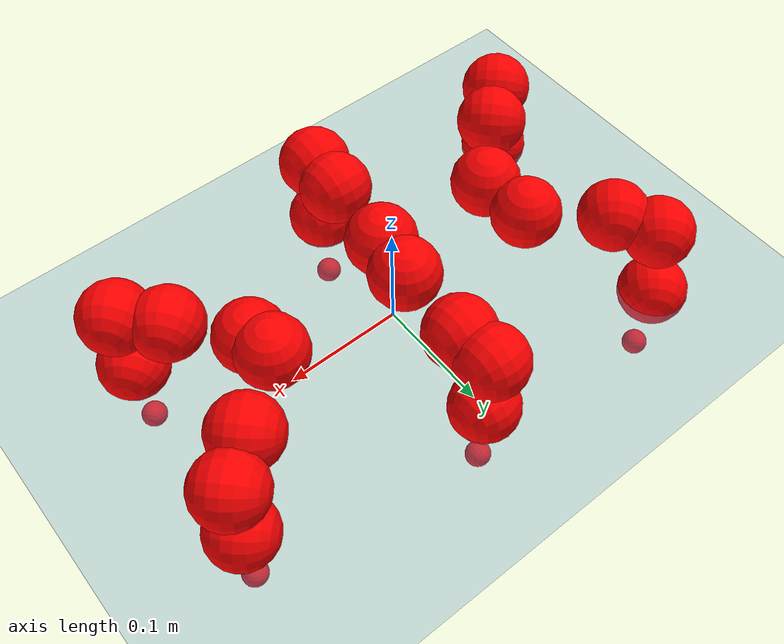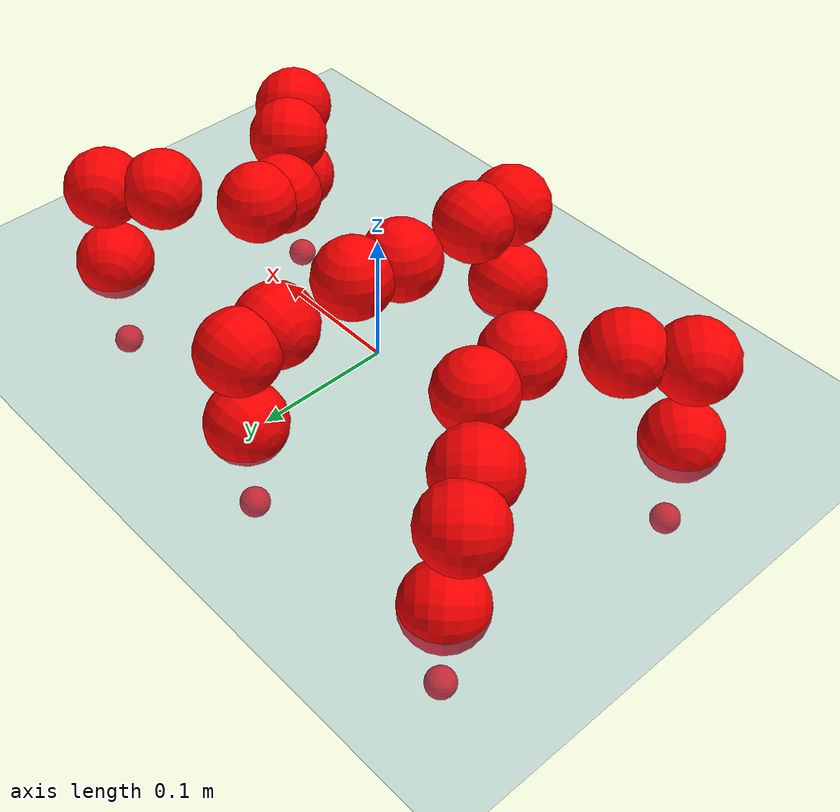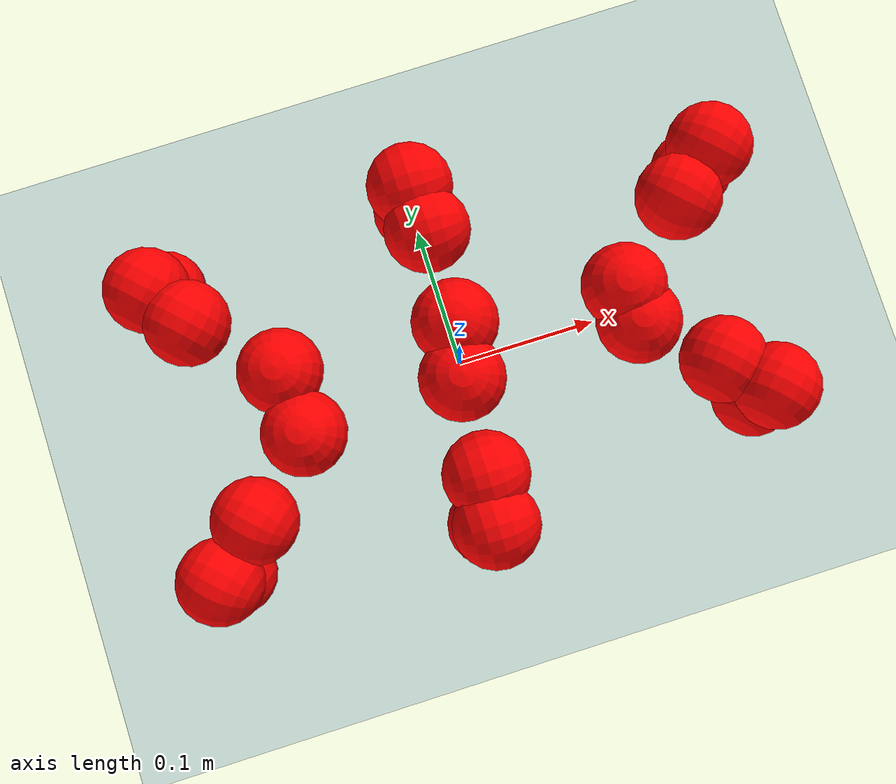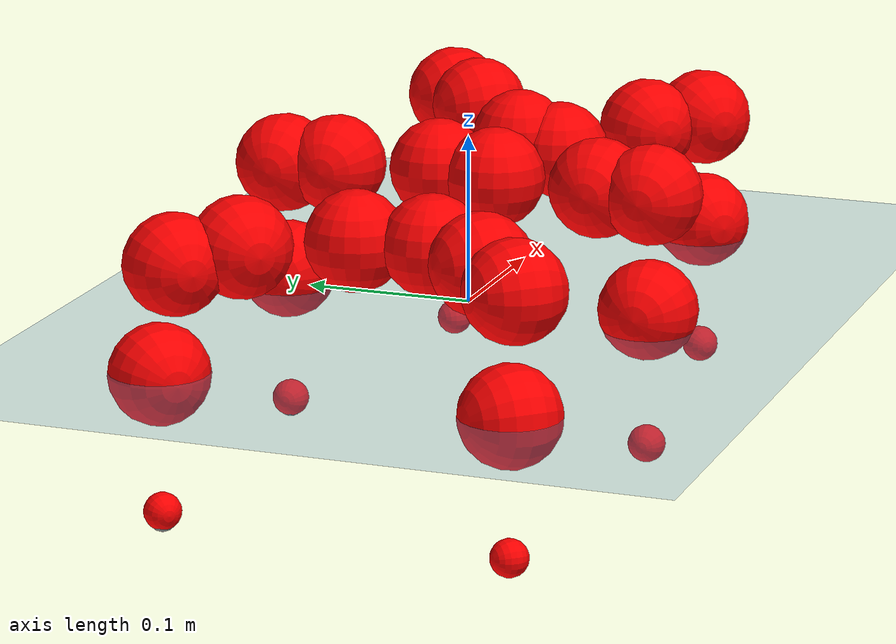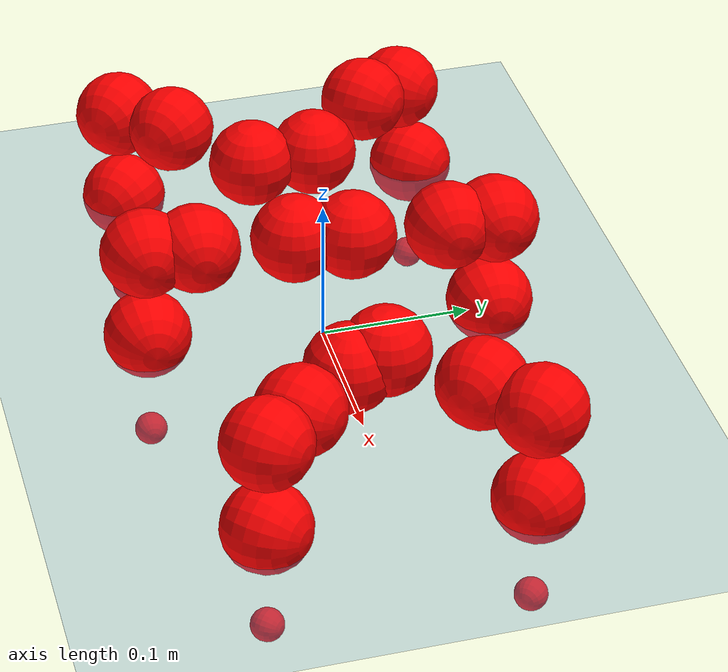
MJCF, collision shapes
<mujoco model="Golem">
  <compiler angle="radian" assetdir="assets" balanceinertia="true" inertiafromgeom="false"/>

  <option timestep="0.005" density="1.2" viscosity="2e-05"/>

  <size nkey="1"/>

  <visual>
    <quality shadowsize="8192"/>
    <map shadowclip="0.5"/>
  </visual>

  <default>
    <default class="/">
      <joint armature="0.01" damping="0.01" frictionloss="0.01"/>
      <geom contype="0" conaffinity="0" group="1" solref="-1000 -80"/>
      <site size="0.01 0.005 0.005" group="5"/>
      <general forcelimited="true" biastype="affine" gainprm="25" biasprm="0 -25 -0.5"/>
      <default class="visual">
        <geom type="mesh" group="2"/>
      </default>
      <default class="collision">
        <geom group="3"/>
      </default>
      <default class="foot">
        <geom size="0.01 0 0" condim="6" group="4" priority="1" solimp="0.015 1 0.01"/>
      </default>
      <default class="reward_collision_sphere">
        <geom group="5" rgba="1 0 0 1"/>
      </default>
    </default>
  </default>

  <asset>
    <texture type="skybox" colorspace="auto" name="//unnamed_texture_0" builtin="gradient" rgb1="0.95 0.95 0.95" rgb2="0.95 0.95 0.95" width="100" height="600"/>
    <texture type="2d" colorspace="auto" name="texplane" builtin="checker" rgb1="0.345 0.575 0.748" rgb2="0.345 0.575 0.748" markrgb="1 1 1" width="512" height="512"/>
    <material name="MatPlane" class="/" texture="texplane" texuniform="true" texrepeat="2 2" specular="0.9"/>
    <mesh name="body" class="/" file="body.stl" scale="0.001 0.001 0.001"/>
    <mesh name="coxa" class="/" file="coxa.stl" scale="0.001 0.001 0.001"/>
    <mesh name="femur" class="/" file="femur.stl" scale="0.001 0.001 0.001"/>
    <mesh name="tibia" class="/" file="tibia.stl" scale="0.001 0.001 0.001"/>
    <mesh name="tarsus" class="/" file="tarsus.stl" scale="0.001 0.001 0.001"/>
  </asset>

  <worldbody>
    <geom name="floor" class="/" size="100 100 0.125" type="plane" group="0" material="MatPlane"/>
    <light name="toplight_shadow" class="/" pos="0 0 5" dir="0.0990148 0.0990148 -0.990148" type="directional" ambient="0.04 0.04 0.04" diffuse="0.55 0.55 0.55" specular="0.12 0.12 0.12"/>
    <light name="toplight_fill" class="/" pos="0 0 5" dir="0.0990148 0.0990148 -0.990148" type="directional" castshadow="false" ambient="0.04 0.04 0.04" diffuse="0.3 0.3 0.3" specular="0.08 0.08 0.08"/>
    <body name="trunk" pos="-0.000787704 0.000801756 0.00218195" quat="0.999995 -0.00243974 0.00209842 0.000305313">
      <inertial pos="0.00219905 -0.00162857 -0.00422276" quat="1 -0.000159158 -3.10109e-05 -0.000133236" mass="1.34137" diaginertia="0.00240217 6.05523e-05 0.0153865"/>
      <joint name="//unnamed_joint_0" type="free"/>
      <geom name="//unnamed_geom_1" class="/" pos="0 0 0.0693523" quat="1 0 0 0" type="mesh" rgba="0.9 0.9 0.9 1" mesh="body"/>
      <site name="imu" class="/" pos="0.0689755 0.00399068 0.107239" size="0.00729592"/>
      <camera name="track" class="/" pos="0 -0.716194 0" quat="0.707107 0.707107 0 0" mode="trackcom"/>
      <camera name="ego_camera" class="/" pos="0.0971163 0 0.108363" quat="-0.5 -0.5 0.5 0.5"/>
      <body name="coxa_RR" pos="-0.12941 -0.0367348 0.0628991" quat="0.3801 -0.000810401 0.00121194 -0.924944">
        <inertial pos="0.000351156 -0.000766918 -0.00290273" quat="0.999971 0.00519487 0.00523617 0.00210253" mass="0.0723675" diaginertia="0.0022554 5.6861e-05 0.0141565"/>
        <joint name="coxa_joint_RR" class="/" pos="0 0 0" axis="-0.00684949 0.0129065 -0.999893" range="-3.0785 3.2367" armature="0.00723686" damping="0.0019831" frictionloss="0.00695992"/>
        <geom name="//unnamed_geom_2" class="/" type="mesh" rgba="0.2 0.2 0.2 1" mesh="coxa"/>
        <geom name="//unnamed_geom_3" class="reward_collision_sphere" size="0.0291837" pos="-0.0224115 0 0"/>
        <body name="femur_RR" pos="0.0425374 -0.000185182 0.00533815" quat="0.499244 -0.499888 0.500727 0.500139">
          <inertial pos="-0.000596754 -0.000204818 -0.00211895" quat="0.999954 0.00442101 -0.00825116 0.00184491" mass="0.078377" diaginertia="0.00231112 5.81229e-05 0.0144869"/>
          <joint name="femur_joint_RR" class="/" pos="0 0 0" axis="0.000690758 -0.000363214 -1" range="-3.23568 3.16258" armature="0.00889651" damping="0.00914105" frictionloss="0.00666857"/>
          <geom name="//unnamed_geom_4" class="/" type="mesh" rgba="0.9 0.9 0.9 1" mesh="femur"/>
          <geom name="//unnamed_geom_5" class="reward_collision_sphere" size="0.0291837"/>
          <body name="tibia_RR" pos="0.00356416 -0.0450377 -0.00146208" quat="0.00098497 0.999999 0.000572128 -0.000333323">
            <inertial pos="-0.00329466 -0.00058463 0.000630983" quat="0.999951 -0.000613946 0.000517576 0.00991" mass="0.074599" diaginertia="0.00228594 5.95734e-05 0.0156827"/>
            <joint name="tibia_joint_RR" class="/" pos="0 0 0" axis="-0.0227085 0.0122903 0.999667" range="-3.2438 3.16517" armature="0.00839712" damping="0.0200417" frictionloss="0.00640402"/>
            <geom name="//unnamed_geom_6" class="/" type="mesh" rgba="0.2 0.2 0.2 1" mesh="tibia"/>
            <geom name="//unnamed_geom_7" class="reward_collision_sphere" size="0.0291837"/>
            <body name="tarsus_RR" pos="0.0693145 -0.000161809 0.00205388" quat="1 0.000445963 0.000371064 0.000213801">
              <inertial pos="0.04816 -0.000354493 0.00271344" quat="0.502432 0.498908 0.501641 0.497" mass="0.074551" diaginertia="0.00231313 5.91346e-05 0.0146451"/>
              <joint name="tarsus_joint_RR" class="/" pos="0 0 0" axis="0.00936081 0.0157319 0.999832" range="-3.14426 3.0902" armature="0.00644418" damping="4.26538e-05" frictionloss="0.00817868"/>
              <geom name="//unnamed_geom_8" class="/" type="mesh" rgba="0.9 0.9 0.9 1" mesh="tarsus"/>
              <geom name="foot_1" class="foot" size="0.00761412" pos="0.0836694 0 0" quat="0 -0.707107 0 0.707107"/>
              <geom name="//unnamed_geom_10" class="reward_collision_sphere" size="0.0291837"/>
              <geom name="//unnamed_geom_11" class="reward_collision_sphere" size="0.0109439" pos="0.0803077 0 0"/>
              <site name="foot_1" class="foot" pos="0.0836694 0 0" quat="0 -0.707107 0 0.707107" size="0.00729592"/>
            </body>
          </body>
        </body>
      </body>
      <body name="coxa_RM" pos="-0.00336655 -0.0412973 0.0754267" quat="0.706871 -0.00146948 0.00183325 -0.707339">
        <inertial pos="0.000362672 0.00416702 0.00122291" quat="0.999951 0.00928294 -0.00317653 0.00159038" mass="0.0797206" diaginertia="0.00242258 5.64331e-05 0.0144372"/>
        <joint name="coxa_joint_RM" class="/" pos="0 0 0" axis="0.0172302 0.011849 -0.999781" range="-3.12626 3.06955" armature="0.00524637" damping="0.0289466" frictionloss="0.00808782"/>
        <geom name="//unnamed_geom_12" class="/" type="mesh" rgba="0.2 0.2 0.2 1" mesh="coxa"/>
        <geom name="//unnamed_geom_13" class="reward_collision_sphere" size="0.0291837" pos="-0.0224115 0 0"/>
        <body name="femur_RM" pos="0.0421747 -0.0042986 0.000230476" quat="0.499997 -0.499998 0.500007 0.499998">
          <inertial pos="-0.00135742 0.00123926 0.00164843" quat="0.99994 0.00687547 -0.00323358 0.00792181" mass="0.0757162" diaginertia="0.00241097 5.65297e-05 0.014359"/>
          <joint name="femur_joint_RM" class="/" pos="0 0 0" axis="-0.000690282 -0.0071151 -0.999974" range="-3.13945 3.11813" armature="0.00667495" damping="0" frictionloss="0.00665388"/>
          <geom name="//unnamed_geom_14" class="/" type="mesh" rgba="0.9 0.9 0.9 1" mesh="femur"/>
          <geom name="//unnamed_geom_15" class="reward_collision_sphere" size="0.0291837"/>
          <body name="tibia_RM" pos="0.000412747 -0.032983 -0.00349187" quat="-0.00113903 0.999999 -0.000205071 0.000488764">
            <inertial pos="0.00106981 -0.00248025 0.0043438" quat="0.999818 0.00228196 -0.0185544 -0.00381079" mass="0.0769015" diaginertia="0.00221383 6.07401e-05 0.0144297"/>
            <joint name="tibia_joint_RM" class="/" pos="0 0 0" axis="0.00400946 0.00399979 0.999984" range="-3.09179 3.12506" armature="0.00577124" damping="0.00544634" frictionloss="0.00509468"/>
            <geom name="//unnamed_geom_16" class="/" type="mesh" rgba="0.2 0.2 0.2 1" mesh="tibia"/>
            <geom name="//unnamed_geom_17" class="reward_collision_sphere" size="0.0291837"/>
            <body name="tarsus_RM" pos="0.0672767 -0.000651586 0.00264567" quat="1 -2.79347e-05 2.18961e-05 3.83935e-05">
              <inertial pos="0.0432335 -0.000925017 -0.00138797" quat="0.493979 0.50282 0.497374 0.505743" mass="0.0801104" diaginertia="0.00233408 5.95097e-05 0.0152589"/>
              <joint name="tarsus_joint_RM" class="/" pos="0 0 0" axis="-0.000123453 -0.00243114 0.999997" range="-3.24471 3.13868" armature="0.00487841" damping="5.03789e-05" frictionloss="0.00784788"/>
              <geom name="//unnamed_geom_18" class="/" type="mesh" rgba="0.9 0.9 0.9 1" mesh="tarsus"/>
              <geom name="foot_2" class="foot" size="0.00595259" pos="0.0836694 0 0" quat="0 -0.707107 0 0.707107"/>
              <geom name="//unnamed_geom_20" class="reward_collision_sphere" size="0.0291837"/>
              <geom name="//unnamed_geom_21" class="reward_collision_sphere" size="0.0109439" pos="0.0803077 0 0"/>
              <site name="foot_2" class="foot" pos="0.0836694 0 0" quat="0 -0.707107 0 0.707107" size="0.00729592"/>
            </body>
          </body>
        </body>
      </body>
      <body name="coxa_RF" pos="0.137001 -0.0325374 0.0627971" quat="0.923723 -0.000120973 -0.000138018 -0.38306">
        <inertial pos="0.00256016 0.00666218 -0.00121046" quat="0.999941 0.00725502 -0.00331442 0.00739381" mass="0.0752543" diaginertia="0.00224666 6.00957e-05 0.0147635"/>
        <joint name="coxa_joint_RF" class="/" pos="0 0 0" axis="-0.000125161 -0.000263445 -1" range="-3.15241 3.04022" armature="0.00765789" damping="0.0215215" frictionloss="0.00643019"/>
        <geom name="//unnamed_geom_22" class="/" type="mesh" rgba="0.2 0.2 0.2 1" mesh="coxa"/>
        <geom name="//unnamed_geom_23" class="reward_collision_sphere" size="0.0291837" pos="-0.0224115 0 0"/>
        <body name="femur_RF" pos="0.0376569 0.000899267 0.00838331" quat="0.499476 -0.500121 0.498644 0.501754">
          <inertial pos="0.00159631 0.00230526 -0.00483107" quat="0.999649 -0.0247827 0.00752602 0.0055572" mass="0.0756803" diaginertia="0.00236618 6.29395e-05 0.014526"/>
          <joint name="femur_joint_RF" class="/" pos="0 0 0" axis="0.00413331 0.0051532 -0.999978" stiffness="0.00746023" range="-3.17774 3.14065" armature="0.00795777" damping="0.00660818" frictionloss="0.00900818"/>
          <geom name="//unnamed_geom_24" class="/" type="mesh" rgba="0.9 0.9 0.9 1" mesh="femur"/>
          <geom name="//unnamed_geom_25" class="reward_collision_sphere" size="0.0291837"/>
          <body name="tibia_RF" pos="-0.00182866 -0.0385292 -0.000216181" quat="-0.00106401 0.999999 4.14533e-05 -0.000471726">
            <inertial pos="-0.000751289 -0.00041614 -0.00100879" quat="0.999961 -0.00322045 -0.00128828 -0.00809295" mass="0.0766544" diaginertia="0.00229225 5.77976e-05 0.0141628"/>
            <joint name="tibia_joint_RF" class="/" pos="0 0 0" axis="0.0034504 -0.020447 0.999785" range="-3.18605 3.1361" armature="0.0067957" damping="0.0192672" frictionloss="0.0073765"/>
            <geom name="//unnamed_geom_26" class="/" type="mesh" rgba="0.2 0.2 0.2 1" mesh="tibia"/>
            <geom name="//unnamed_geom_27" class="reward_collision_sphere" size="0.0291837"/>
            <body name="tarsus_RF" pos="0.0651704 0.000221077 0.000546241" quat="0.999997 0.000809383 -0.00165427 -0.00139165">
              <inertial pos="0.0497449 0.000419737 -0.00629495" quat="0.489861 0.504013 0.505771 0.500203" mass="0.0832243" diaginertia="0.00232672 6.07071e-05 0.0162217"/>
              <joint name="tarsus_joint_RF" class="/" pos="0 0 0" axis="-0.00399911 0.0263436 0.999645" range="-3.24639 3.18106" armature="0.00718203" damping="0.00523575" frictionloss="0.00666377"/>
              <geom name="//unnamed_geom_28" class="/" type="mesh" rgba="0.9 0.9 0.9 1" mesh="tarsus"/>
              <geom name="foot_3" class="foot" size="0.00776131" pos="0.0836694 0 0" quat="0 -0.707107 0 0.707107"/>
              <geom name="//unnamed_geom_30" class="reward_collision_sphere" size="0.0291837"/>
              <geom name="//unnamed_geom_31" class="reward_collision_sphere" size="0.0109439" pos="0.0803077 0 0"/>
              <site name="foot_3" class="foot" pos="0.0836694 0 0" quat="0 -0.707107 0 0.707107" size="0.00729592"/>
            </body>
          </body>
        </body>
      </body>
      <body name="coxa_LR" pos="-0.132603 0.039205 0.0625026" quat="0.384427 -4.11371e-05 -0.00153416 0.923154">
        <inertial pos="-0.00436779 0.00045496 0.00122067" quat="0.999902 0.00818116 0.0113155 -0.00103503" mass="0.0775949" diaginertia="0.00239099 5.87261e-05 0.0149025"/>
        <joint name="coxa_joint_LR" class="/" pos="0 0 0" axis="0.0208265 0.0162761 -0.999651" range="-3.18673 3.18149" armature="0.0068906" damping="0.0376263" frictionloss="0.00716588"/>
        <geom name="//unnamed_geom_32" class="/" type="mesh" rgba="0.2 0.2 0.2 1" mesh="coxa"/>
        <geom name="//unnamed_geom_33" class="reward_collision_sphere" size="0.0291837" pos="-0.0224115 0 0"/>
        <body name="femur_LR" pos="0.0466248 0.000540817 0.00440164" quat="0.500044 -0.498186 0.500775 0.50099">
          <inertial pos="0.00140362 -0.00230357 0.00177354" quat="0.999998 0.00117495 -0.000941098 -0.00153314" mass="0.0733253" diaginertia="0.00225705 5.78795e-05 0.0145978"/>
          <joint name="femur_joint_LR" class="/" pos="0 0 0" axis="-0.000524393 -0.000158762 1" stiffness="0.0102367" range="-3.13717 3.00747" armature="0.00649059" damping="0.0145824" frictionloss="0.00507952"/>
          <geom name="//unnamed_geom_34" class="/" type="mesh" rgba="0.9 0.9 0.9 1" mesh="femur"/>
          <geom name="//unnamed_geom_35" class="reward_collision_sphere" size="0.0291837"/>
          <body name="tibia_LR" pos="0.00721592 -0.0366457 -0.00710107" quat="0.00127194 0.999999 -0.000351966 -0.000535302">
            <inertial pos="0.002093 -0.00271584 0.0030403" quat="0.999948 -0.00102188 0.00223652 -0.00984846" mass="0.0756087" diaginertia="0.0022474 5.55974e-05 0.014503"/>
            <joint name="tibia_joint_LR" class="/" pos="0 0 0" axis="0.000481393 -0.0050515 -0.999987" range="-3.10217 3.22254" armature="0.0092831" damping="0" frictionloss="0.00738175"/>
            <geom name="//unnamed_geom_36" class="/" type="mesh" rgba="0.2 0.2 0.2 1" mesh="tibia"/>
            <geom name="//unnamed_geom_37" class="reward_collision_sphere" size="0.0291837"/>
            <body name="tarsus_LR" pos="0.0645194 0.00714613 0.00838925" quat="1 0.000640739 -0.000365939 0.000400633">
              <inertial pos="0.0472036 0.000164915 -0.00168438" quat="0.505177 0.498727 0.497709 0.498351" mass="0.0792822" diaginertia="0.00239223 5.98071e-05 0.0155209"/>
              <joint name="tarsus_joint_LR" class="/" pos="0 0 0" axis="-0.00676442 -0.00709865 -0.999952" stiffness="0.00450541" range="-3.23724 3.15492" armature="0.00736672" damping="0.0404806" frictionloss="0.00818361"/>
              <geom name="//unnamed_geom_38" class="/" type="mesh" rgba="0.9 0.9 0.9 1" mesh="tarsus"/>
              <geom name="foot_4" class="foot" size="0.00842125" pos="0.0836694 0 0" quat="0.707107 0 -0.707107 0"/>
              <geom name="//unnamed_geom_40" class="reward_collision_sphere" size="0.0291837"/>
              <geom name="//unnamed_geom_41" class="reward_collision_sphere" size="0.0109439" pos="0.0803077 0 0"/>
              <site name="foot_4" class="foot" pos="0.0836694 0 0" quat="0.707107 0 -0.707107 0" size="0.00729592"/>
            </body>
          </body>
        </body>
      </body>
      <body name="coxa_LM" pos="0.00311075 0.0402389 0.076262" quat="0.70497 -0.000515031 0.00124211 0.709236">
        <inertial pos="-0.000881694 9.61492e-05 -0.00101879" quat="0.999935 0.00402258 0.00721389 -0.00785791" mass="0.0699384" diaginertia="0.00197403 5.3721e-05 0.0137802"/>
        <joint name="coxa_joint_LM" class="/" pos="0 0 0" axis="-0.00330946 -0.000354531 -0.999994" range="-3.07269 3.09179" armature="0.0080573" damping="0.00718899" frictionloss="0.00622055"/>
        <geom name="//unnamed_geom_42" class="/" type="mesh" rgba="0.2 0.2 0.2 1" mesh="coxa"/>
        <geom name="//unnamed_geom_43" class="reward_collision_sphere" size="0.0291837" pos="-0.0224115 0 0"/>
        <body name="femur_LM" pos="0.0422741 -0.0015437 -0.00273643" quat="0.499919 -0.50004 0.50003 0.500011">
          <inertial pos="0.000416989 0.00222241 0.000970966" quat="0.99999 -0.00247503 -1.94265e-05 0.00370777" mass="0.0855593" diaginertia="0.00243622 6.38427e-05 0.0162633"/>
          <joint name="femur_joint_LM" class="/" pos="0 0 0" axis="0.00118415 0.00160777 0.999998" stiffness="0.00381217" range="-3.09585 3.09703" armature="0.00730956" damping="0" frictionloss="0.00682365"/>
          <geom name="//unnamed_geom_44" class="/" type="mesh" rgba="0.9 0.9 0.9 1" mesh="femur"/>
          <geom name="//unnamed_geom_45" class="reward_collision_sphere" size="0.0291837"/>
          <body name="tibia_LM" pos="0.00130549 -0.0324845 0.00186737" quat="-0.000194062 0.999999 0.00113793 4.98312e-05">
            <inertial pos="0.00545363 -0.00675863 0.00209697" quat="0.999999 0.000658106 -0.000312027 0.000919356" mass="0.0770534" diaginertia="0.00249636 6.12288e-05 0.0157994"/>
            <joint name="tibia_joint_LM" class="/" pos="0 0 0" axis="0.00277952 -0.00167751 -0.999995" stiffness="0.0106859" range="-3.18649 3.13398" armature="0.00731933" damping="0.00244819" frictionloss="0.00750504"/>
            <geom name="//unnamed_geom_46" class="/" type="mesh" rgba="0.2 0.2 0.2 1" mesh="tibia"/>
            <geom name="//unnamed_geom_47" class="reward_collision_sphere" size="0.0291837"/>
            <body name="tarsus_LM" pos="0.065177 -0.000894662 0.00050758" quat="1 0.000642776 -0.000703211 -6.5605e-05">
              <inertial pos="0.0442139 -0.00120859 0.000328944" quat="0.502331 0.499547 0.506834 0.491158" mass="0.0813118" diaginertia="0.0024626 6.0729e-05 0.0147716"/>
              <joint name="tarsus_joint_LM" class="/" pos="0 0 0" axis="0.0127427 0.00916891 -0.999877" range="-3.10212 3.18282" armature="0.00728335" damping="0" frictionloss="0.00847771"/>
              <geom name="//unnamed_geom_48" class="/" type="mesh" rgba="0.9 0.9 0.9 1" mesh="tarsus"/>
              <geom name="foot_5" class="foot" size="0.00802113" pos="0.0836694 0 0" quat="0.707107 0 -0.707107 0"/>
              <geom name="//unnamed_geom_50" class="reward_collision_sphere" size="0.0291837"/>
              <geom name="//unnamed_geom_51" class="reward_collision_sphere" size="0.0109439" pos="0.0803077 0 0"/>
              <site name="foot_5" class="foot" pos="0.0836694 0 0" quat="0.707107 0 -0.707107 0" size="0.00729592"/>
            </body>
          </body>
        </body>
      </body>
      <body name="coxa_LF" pos="0.133842 0.0236125 0.0692807" quat="0.92388 1.18276e-07 1.14261e-06 0.382683">
        <inertial pos="-0.00278905 0.00215788 -0.00154667" quat="0.999941 0.0101901 0.000447238 0.00368871" mass="0.0810552" diaginertia="0.00242075 6.3768e-05 0.0156036"/>
        <joint name="coxa_joint_LF" class="/" pos="0 0 0" axis="-0.000549818 -0.000619507 -1" stiffness="0.00674137" range="-3.10324 3.11205" armature="0.00710098" damping="0.0113245" frictionloss="0.00724063"/>
        <geom name="//unnamed_geom_52" class="/" type="mesh" rgba="0.2 0.2 0.2 1" mesh="coxa"/>
        <geom name="//unnamed_geom_53" class="reward_collision_sphere" size="0.0291837" pos="-0.0224115 0 0"/>
        <body name="femur_LF" pos="0.0466619 -0.00498286 0.00572783" quat="0.49993 -0.499966 0.49964 0.500464">
          <inertial pos="-0.000464845 0.00102735 -0.00275117" quat="0.999512 0.0194957 -0.00616655 0.0236016" mass="0.0779731" diaginertia="0.00228026 6.24975e-05 0.0151623"/>
          <joint name="femur_joint_LF" class="/" pos="0 0 0" axis="0.0021442 0.000874013 0.999997" range="-3.11017 3.13124" armature="0.00653479" damping="0" frictionloss="0.00971722"/>
          <geom name="//unnamed_geom_54" class="/" type="mesh" rgba="0.9 0.9 0.9 1" mesh="femur"/>
          <geom name="//unnamed_geom_55" class="reward_collision_sphere" size="0.0291837"/>
          <body name="tibia_LF" pos="0.00186944 -0.04175 -0.00282779" quat="9.23736e-06 1 -1.14555e-06 5.82108e-05">
            <inertial pos="0.0013177 -0.000838046 0.00170531" quat="1 -2.9163e-05 4.3374e-05 -1.13837e-05" mass="0.0766843" diaginertia="0.00228653 5.92289e-05 0.0150701"/>
            <joint name="tibia_joint_LF" class="/" pos="0 0 0" axis="-0.00110576 -0.00123111 -0.999999" range="-3.02099 3.17236" armature="0.00719142" damping="0" frictionloss="0.00788897"/>
            <geom name="//unnamed_geom_56" class="/" type="mesh" rgba="0.2 0.2 0.2 1" mesh="tibia"/>
            <geom name="//unnamed_geom_57" class="reward_collision_sphere" size="0.0291837"/>
            <body name="tarsus_LF" pos="0.0674112 0.00124156 9.59314e-05" quat="1 -0.000397166 -0.000237367 0.000295248">
              <inertial pos="0.044616 -0.000640237 -0.00569487" quat="0.498191 0.501107 0.502575 0.498113" mass="0.0743347" diaginertia="0.00234478 5.80745e-05 0.0151566"/>
              <joint name="tarsus_joint_LF" class="/" pos="0 0 0" axis="-0.0027603 -0.0128314 -0.999914" stiffness="0.0175698" range="-3.14092 3.1222" armature="0.00711775" damping="0.0426084" frictionloss="0.00816949"/>
              <geom name="//unnamed_geom_58" class="/" type="mesh" rgba="0.9 0.9 0.9 1" mesh="tarsus"/>
              <geom name="foot_6" class="foot" size="0.00721204" pos="0.0836694 0 0" quat="0.707107 0 -0.707107 0"/>
              <geom name="//unnamed_geom_60" class="reward_collision_sphere" size="0.0291837"/>
              <geom name="//unnamed_geom_61" class="reward_collision_sphere" size="0.0109439" pos="0.0803077 0 0"/>
              <site name="foot_6" class="foot" pos="0.0836694 0 0" quat="0.707107 0 -0.707107 0" size="0.00729592"/>
            </body>
          </body>
        </body>
      </body>
    </body>
  </worldbody>

  <contact>
    <pair class="/" geom1="floor" geom2="foot_1" name="//unnamed_contact_0"/>
    <pair class="/" geom1="floor" geom2="foot_2" name="//unnamed_contact_1"/>
    <pair class="/" geom1="floor" geom2="foot_3" name="//unnamed_contact_2"/>
    <pair class="/" geom1="floor" geom2="foot_4" name="//unnamed_contact_3"/>
    <pair class="/" geom1="floor" geom2="foot_5" name="//unnamed_contact_4"/>
    <pair class="/" geom1="floor" geom2="foot_6" name="//unnamed_contact_5"/>
  </contact>

  <actuator>
    <general name="coxa_joint_RR" class="/" joint="coxa_joint_RR" forcerange="-4.88819 4.88819" gainprm="20.934" biasprm="0 -20.934 -0.417173"/>
    <general name="femur_joint_RR" class="/" joint="femur_joint_RR" forcerange="-5.46415 5.46415" gainprm="20.934" biasprm="0 -20.934 -0.417173"/>
    <general name="tibia_joint_RR" class="/" joint="tibia_joint_RR" forcerange="-4.8918 4.8918" gainprm="20.934" biasprm="0 -20.934 -0.417173"/>
    <general name="tarsus_joint_RR" class="/" joint="tarsus_joint_RR" forcerange="-5.80674 5.80674" gainprm="20.934" biasprm="0 -20.934 -0.417173"/>
    <general name="coxa_joint_RM" class="/" joint="coxa_joint_RM" forcerange="-4.85814 4.85814" gainprm="20.934" biasprm="0 -20.934 -0.417173"/>
    <general name="femur_joint_RM" class="/" joint="femur_joint_RM" forcerange="-4.62927 4.62927" gainprm="20.934" biasprm="0 -20.934 -0.417173"/>
    <general name="tibia_joint_RM" class="/" joint="tibia_joint_RM" forcerange="-5.2232 5.2232" gainprm="20.934" biasprm="0 -20.934 -0.417173"/>
    <general name="tarsus_joint_RM" class="/" joint="tarsus_joint_RM" forcerange="-4.13491 4.13491" gainprm="20.934" biasprm="0 -20.934 -0.417173"/>
    <general name="coxa_joint_RF" class="/" joint="coxa_joint_RF" forcerange="-4.40676 4.40676" gainprm="20.934" biasprm="0 -20.934 -0.417173"/>
    <general name="femur_joint_RF" class="/" joint="femur_joint_RF" forcerange="-6.2589 6.2589" gainprm="20.934" biasprm="0 -20.934 -0.417173"/>
    <general name="tibia_joint_RF" class="/" joint="tibia_joint_RF" forcerange="-5.1605 5.1605" gainprm="20.934" biasprm="0 -20.934 -0.417173"/>
    <general name="tarsus_joint_RF" class="/" joint="tarsus_joint_RF" forcerange="-5.64952 5.64952" gainprm="20.934" biasprm="0 -20.934 -0.417173"/>
    <general name="coxa_joint_LR" class="/" joint="coxa_joint_LR" forcerange="-5.34406 5.34406" gainprm="20.934" biasprm="0 -20.934 -0.417173"/>
    <general name="femur_joint_LR" class="/" joint="femur_joint_LR" forcerange="-5.69749 5.69749" gainprm="20.934" biasprm="0 -20.934 -0.417173"/>
    <general name="tibia_joint_LR" class="/" joint="tibia_joint_LR" forcerange="-5.19094 5.19094" gainprm="20.934" biasprm="0 -20.934 -0.417173"/>
    <general name="tarsus_joint_LR" class="/" joint="tarsus_joint_LR" forcerange="-4.85248 4.85248" gainprm="20.934" biasprm="0 -20.934 -0.417173"/>
    <general name="coxa_joint_LM" class="/" joint="coxa_joint_LM" forcerange="-5.25637 5.25637" gainprm="20.934" biasprm="0 -20.934 -0.417173"/>
    <general name="femur_joint_LM" class="/" joint="femur_joint_LM" forcerange="-5.25047 5.25047" gainprm="20.934" biasprm="0 -20.934 -0.417173"/>
    <general name="tibia_joint_LM" class="/" joint="tibia_joint_LM" forcerange="-6.50004 6.50004" gainprm="20.934" biasprm="0 -20.934 -0.417173"/>
    <general name="tarsus_joint_LM" class="/" joint="tarsus_joint_LM" forcerange="-5.2692 5.2692" gainprm="20.934" biasprm="0 -20.934 -0.417173"/>
    <general name="coxa_joint_LF" class="/" joint="coxa_joint_LF" forcerange="-4.60924 4.60924" gainprm="20.934" biasprm="0 -20.934 -0.417173"/>
    <general name="femur_joint_LF" class="/" joint="femur_joint_LF" forcerange="-4.54226 4.54226" gainprm="20.934" biasprm="0 -20.934 -0.417173"/>
    <general name="tibia_joint_LF" class="/" joint="tibia_joint_LF" forcerange="-5.26742 5.26742" gainprm="20.934" biasprm="0 -20.934 -0.417173"/>
    <general name="tarsus_joint_LF" class="/" joint="tarsus_joint_LF" forcerange="-4.93075 4.93075" gainprm="20.934" biasprm="0 -20.934 -0.417173"/>
  </actuator>

  <sensor>
    <gyro site="imu" name="imu_angular_velocity"/>
    <velocimeter site="imu" name="imu_linear_velocity"/>
    <framelinvel objtype="site" objname="foot_1" name="foot_1_global_linear_velocity"/>
    <framelinvel objtype="site" objname="foot_2" name="foot_2_global_linear_velocity"/>
    <framelinvel objtype="site" objname="foot_3" name="foot_3_global_linear_velocity"/>
    <framelinvel objtype="site" objname="foot_4" name="foot_4_global_linear_velocity"/>
    <framelinvel objtype="site" objname="foot_5" name="foot_5_global_linear_velocity"/>
    <framelinvel objtype="site" objname="foot_6" name="foot_6_global_linear_velocity"/>
  </sensor>

  <keyframe>
    <key name="home" qpos="0 0 0.1457 1 0 0 0 0 0 0 0 0 0 0 0 0 0 0 0 0 0 0 0 0 0 0 0 0 0 0 0"/>
  </keyframe>
</mujoco>
